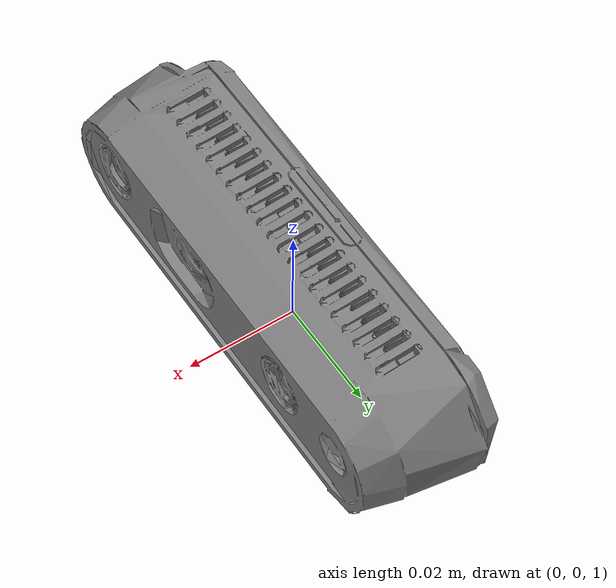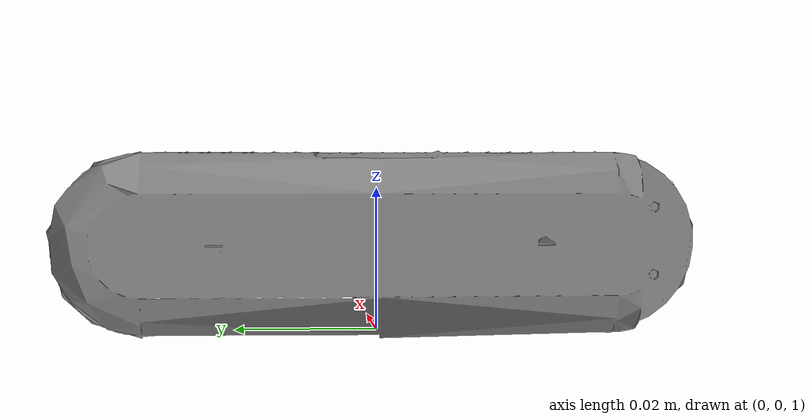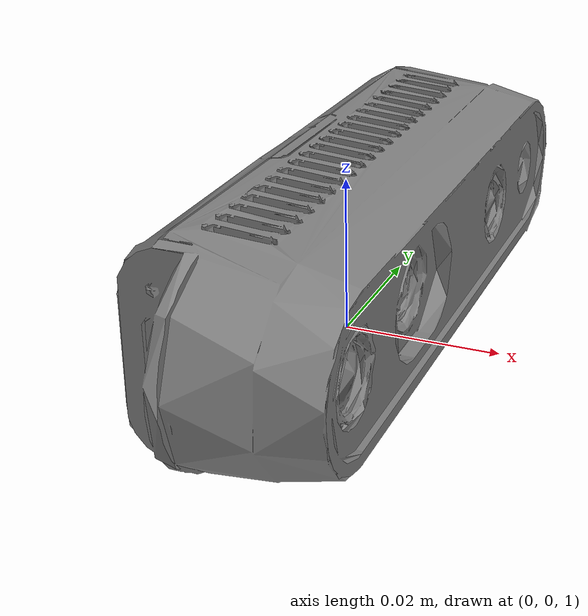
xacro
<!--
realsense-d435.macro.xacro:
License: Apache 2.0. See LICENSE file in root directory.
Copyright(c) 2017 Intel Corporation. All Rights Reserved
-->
<?xml version="1.0"?>
<!--Develped by Daniel Ordonez 22.05.2018 - daniels.ordonez@gmail.com
  INFORMATION:
    This is an example of how to use the realsense-d435 macro function.
-->
<robot name="robot_with_d435" xmlns:xacro="http://ros.org/wiki/xacro">
    <link name="world"/>

    <!-- Import macro for realsense-d435 camera-->
    <xacro:include filename="$(find couchmobile_description)/urdf/realsense-d435.macro.xacro"/>
    <!-- Create camera instance -->
    <xacro:sensor-d435 prefix="" parent="world">
        <origin xyz="0 0 1.0" rpy="0 0 0" />
    </xacro:sensor-d435>
</robot>

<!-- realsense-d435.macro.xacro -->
<robot name="sensor-d435" xmlns:xacro="http://ros.org/wiki/xacro">
<xacro:macro name="sensor-d435" params="prefix parent *origin">
    <xacro:property name="M_PI" value="3.1415926535897931" />

    <!-- The following values are approximate, and the camera node
     publishing TF values with actual calibrated camera extrinsic values -->
    <xacro:property name="d435_cam_depth_to_left_ir_offset" value="0.0"/>
    <xacro:property name="d435_cam_depth_to_right_ir_offset" value="-0.050"/>
    <xacro:property name="d435_cam_depth_to_color_offset" value="0.015"/>

    <!-- The following values model the aluminum peripherial case for the
    D435 camera, with the camera joint represented by the actual
    peripherial camera tripod mount -->
    <xacro:property name="d435_cam_width" value="0.090"/>
    <xacro:property name="d435_cam_height" value="0.025"/>
    <xacro:property name="d435_cam_depth" value="0.02505"/>
    <xacro:property name="d435_cam_mount_from_center_offset" value="0.0149"/>

    <!-- The following offset is relative the the physical D435 camera peripherial
    camera tripod mount -->
    <xacro:property name="d435_cam_depth_px" value="${d435_cam_mount_from_center_offset}"/>
    <xacro:property name="d435_cam_depth_py" value="0.0175"/>
    <xacro:property name="d435_cam_depth_pz" value="${d435_cam_height/2}"/>

    <!-- Camera image properties -->
    <xacro:property name="ir_h" value="480"/>
    <xacro:property name="ir_w" value="848"/>
    <xacro:property name="color_h" value="480"/>
    <xacro:property name="color_w" value="848"/>

    <xacro:property name="ir_fps" value="60"/>
    <xacro:property name="color_fps" value="60"/>

    <xacro:property name="ir_fov" value="1.204"/>
    <xacro:property name="color_fov" value="1.5184"/>

    <material name="aluminum">
        <color rgba="0.5 0.5 0.5 1"/>
    </material>

    <!-- camera body, with origin at bottom screw mount -->
    <joint name="camera_joint" type="fixed">
        <xacro:insert_block name="origin" />
        <parent link="${parent}"/>
        <child link="camera_bottom_screw_frame" />
    </joint>
    <link name="camera_bottom_screw_frame"/>

    <joint name="camera_link_joint" type="fixed">
        <origin xyz="0 ${d435_cam_depth_py} ${d435_cam_depth_pz}" rpy="0 0 0"/>
        <parent link="camera_bottom_screw_frame"/>
        <child link="camera_link" />
    </joint>

    <link name="camera_link">
        <visual>
            <origin xyz="${d435_cam_mount_from_center_offset} ${-d435_cam_depth_py} 0" rpy="${M_PI/2} 0 ${M_PI/2}"/>
            <geometry>
                <mesh filename="package://realsense2_description/meshes/d435.dae" />

            </geometry>
            <material name="aluminum"/>
        </visual>
        <collision>
            <origin xyz="0 ${-d435_cam_depth_py} 0" rpy="0 0 0"/>
            <geometry>
                <box size="${d435_cam_depth} ${d435_cam_width} ${d435_cam_height}"/>
            </geometry>
        </collision>
        <inertial>
            <!-- The following are not reliable values, and should not be used for modeling -->
            <mass value="0.564" />
            <origin xyz="0 0 0" />
            <inertia ixx="0.003881243" ixy="0.0" ixz="0.0" iyy="0.000498940" iyz="0.0" izz="0.003879257" />
        </inertial>
    </link>

    <!-- camera depth joints and links -->
    <joint name="camera_depth_joint" type="fixed">
        <origin xyz="0 0 0" rpy="0 0 0"/>
        <parent link="camera_link"/>
        <child link="camera_depth_frame" />
    </joint>
    <link name="camera_depth_frame"/>

    <joint name="camera_depth_optical_joint" type="fixed">
        <origin xyz="0 0 0" rpy="${-M_PI/2} 0 ${-M_PI/2}" />
        <parent link="camera_depth_frame" />
        <child link="camera_depth_optical_frame" />
    </joint>
    <link name="camera_depth_optical_frame"/>

    <!-- camera left IR joints and links -->
    <joint name="camera_left_ir_joint" type="fixed">
        <origin xyz="0 ${d435_cam_depth_to_left_ir_offset} 0" rpy="0 0 0" />
        <parent link="camera_depth_frame" />
        <child link="camera_left_ir_frame" />
    </joint>
    <link name="camera_left_ir_frame"/>

    <joint name="camera_left_ir_optical_joint" type="fixed">
        <origin xyz="0 0 0" rpy="${-M_PI/2} 0 ${-M_PI/2}" />
        <parent link="camera_left_ir_frame" />
        <child link="camera_left_ir_optical_frame" />
    </joint>
    <link name="camera_left_ir_optical_frame"/>

    <!-- camera right IR joints and links -->
    <joint name="camera_right_ir_joint" type="fixed">
        <origin xyz="0 ${d435_cam_depth_to_right_ir_offset} 0" rpy="0 0 0" />
        <parent link="camera_depth_frame" />
        <child link="camera_right_ir_frame" />
    </joint>
    <link name="camera_right_ir_frame"/>

    <joint name="camera_right_ir_optical_joint" type="fixed">
        <origin xyz="0 0 0" rpy="${-M_PI/2} 0 ${-M_PI/2}" />
        <parent link="camera_right_ir_frame" />
        <child link="camera_right_ir_optical_frame" />
    </joint>
    <link name="camera_right_ir_optical_frame"/>

    <!-- camera color joints and links -->
    <joint name="camera_color_joint" type="fixed">
        <origin xyz="0 ${d435_cam_depth_to_color_offset} 0" rpy="0 0 0" />
        <parent link="camera_depth_frame" />
        <child link="camera_color_frame" />
    </joint>
    <link name="camera_color_frame"/>

    <joint name="camera_color_optical_joint" type="fixed">
        <origin xyz="0 0 0" rpy="${-M_PI/2} 0 ${-M_PI/2}" />
        <parent link="camera_color_frame" />
        <child link="camera_color_optical_frame" />
    </joint>
    <link name="camera_color_optical_frame"/>

<!-- GAZEBO DEFINITIONS ***************************************-->

    <!-- Load parameters to model's main link-->
    <gazebo reference="camera_link">
        <self_collide>0</self_collide>
        <enable_wind>0</enable_wind>
        <kinematic>0</kinematic>
        <gravity>true</gravity>
        <mu2>1</mu2>
        <fdir1>0 0 0</fdir1>
        <kp>1e+13</kp>
        <kd>1</kd>

        <sensor name="color" type="camera">
            <pose frame="">0 ${d435_cam_depth_to_color_offset} 0.0 0 0 0</pose>
            <camera name="${prefix}d435_camera">
                <horizontal_fov>${color_fov}</horizontal_fov>
                <image>
                    <width>${color_w}</width>
                    <height>${color_h}</height>
                    <format>RGB_INT8</format>
                </image>
                <clip>
                    <near>0.1</near>
                    <far>100</far>
                </clip>
                <noise>
                    <type>gaussian</type>
                    <mean>0.0</mean>
                    <stddev>0.007</stddev>
                </noise>
            </camera>
            <always_on>1</always_on>
            <update_rate>${color_fps}</update_rate>
            <visualize>1</visualize>
        </sensor>

        <sensor name="ired1" type="camera">
            <pose frame="">0 ${d435_cam_depth_to_right_ir_offset} 0 0 0 0</pose>
            <camera name="${prefix}d435_camera">
                <horizontal_fov>${ir_fov}</horizontal_fov>
                <image>
                    <width>${ir_w}</width>
                    <height>${ir_h}</height>
                    <format>L_INT8</format>
                </image>
                <clip>
                    <near>0.1</near>
                    <far>100</far>
                </clip>
                <noise>
                    <type>gaussian</type>
                    <mean>0.0</mean>
                    <stddev>0.05</stddev>
                </noise>
            </camera>
            <always_on>1</always_on>
            <update_rate>${ir_fps}</update_rate>
            <visualize>0</visualize>
        </sensor>
        <sensor name="ired2" type="camera">
            <pose frame="">0 ${d435_cam_depth_to_left_ir_offset} 0 0 0 0</pose>
            <camera name="${prefix}d435_camera">
                <horizontal_fov>${ir_fov}</horizontal_fov>
                <image>
                    <width>${ir_w}</width>
                    <height>${ir_h}</height>
                    <format>L_INT8</format>
                </image>
                <clip>
                    <near>0.1</near>
                    <far>100</far>
                </clip>
                <noise>
                    <type>gaussian</type>
                    <mean>0.0</mean>
                    <stddev>0.05</stddev>
                </noise>
            </camera>
            <always_on>1</always_on>
            <update_rate>${ir_fps}</update_rate>
            <visualize>0</visualize>
        </sensor>
        <sensor name="depth" type="depth">
            <pose frame="">0 0 0 0 0 0</pose>
            <camera name="${prefix}d435_camera">
                <horizontal_fov>${ir_fov}</horizontal_fov>
                <image>
                    <width>${ir_w}</width>
                    <height>${ir_h}</height>
                </image>
                <clip>
                    <near>0.1</near>
                    <far>100</far>
                </clip>
                <noise>
                    <type>gaussian</type>
                    <mean>0.0</mean>
                    <stddev>0.100</stddev>
                </noise>
            </camera>
            <always_on>1</always_on>
            <update_rate>${ir_fps}</update_rate>
            <visualize>0</visualize>
        </sensor>
    </gazebo>

<!-- Load plugin to the model ("robot" in urdf format)-->
    <gazebo>
        <plugin name="${prefix}d435" filename="librealsense_gazebo_plugin.so"/>
        <depthUpdateRate>60.0</depthUpdateRate>
      	<colorUpdateRate>60.0</colorUpdateRate>
      	<infraredUpdateRate>60.0</infraredUpdateRate>
      	<depthTopicName>depth/image_raw</depthTopicName>
      	<depthCameraInfoTopicName>depth/camera_info</depthCameraInfoTopicName>
      	<colorTopicName>color/image_raw</colorTopicName>
      	<colorCameraInfoTopicName>color/camera_info</colorCameraInfoTopicName>
      	<infrared1TopicName>infra1/image_raw</infrared1TopicName>
      	<infrared1CameraInfoTopicName>infra1/camera_info</infrared1CameraInfoTopicName>
      	<infrared2TopicName>infra2/image_raw</infrared2TopicName>
      	<infrared2CameraInfoTopicName>infra2/camera_info</infrared2CameraInfoTopicName>
      	<colorOpticalframeName>camera_color_optical_frame</colorOpticalframeName>
      	<depthOpticalframeName>camera_depth_optical_frame</depthOpticalframeName>
      	<infrared1OpticalframeName>camera_right_ir_optical_frame</infrared1OpticalframeName>
      	<infrared2OpticalframeName>camera_left_ir_optical_frame</infrared2OpticalframeName>
      	<rangeMinDepth>0.2</rangeMinDepth>
      	<rangeMaxDepth>10.0</rangeMaxDepth>
      	<pointCloud>false</pointCloud>
      	<pointCloudTopicName>depth/points</pointCloudTopicName>
      	<pointCloudCutoff>0.5</pointCloudCutoff>
    </gazebo>
</xacro:macro>
</robot>
